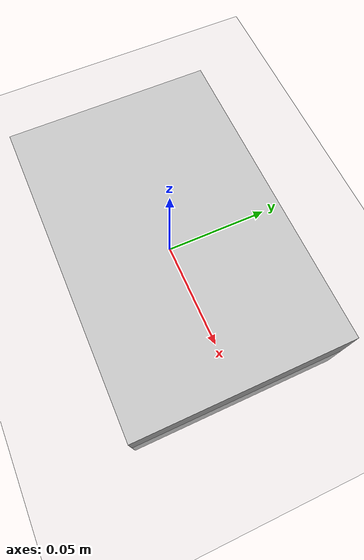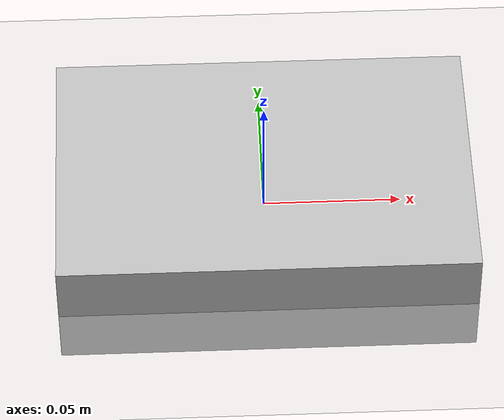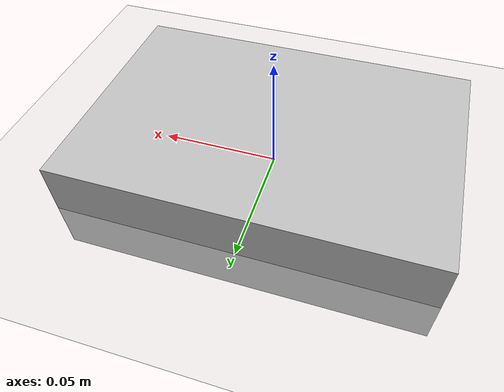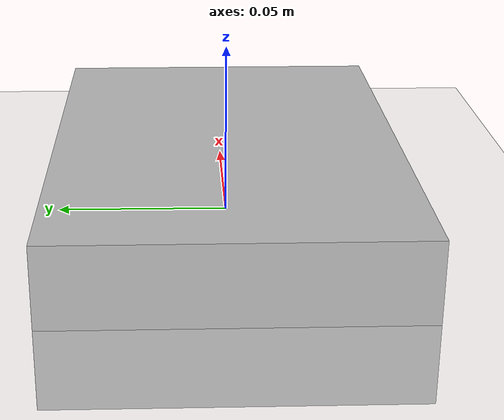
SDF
<?xml version="1.0" ?>

<sdf version="1.4">
    <!-- Custom world for the softfoot_thing. -->
    <!-- One can change this world to his needs or use another one. -->

    <world name="objects_softfoot_world">

        <include>
            <uri>model://ground_plane</uri>
        </include>
        <include>
            <uri>model://sun</uri>
        </include>
        <gui>
            <camera name="user_camera">
                <pose>-0.231 -0.351 0.419 0.000 0.744 1.020</pose>
            </camera>
        </gui>

        <!-- Box -->
        <model name="box">
            <pose>0 0 0 0 0 0</pose>
            <static>false</static>
            <link name='linkTable'>
                <pose>0.0 0 0 0 0 0</pose>
                <collision name="my_collisionTable">
                    <pose>0 0 0 0 0 0</pose>
                    <geometry>
                        <box>
                            <size>0.15 0.1 0.045</size>
                        </box>
                    </geometry>
                </collision>

                <visual name="my_visualTable">
                    <geometry>
                        <box>
                            <size>0.15 0.1 0.045</size>
                        </box>
                    </geometry>
                </visual>

                <self_collide>0</self_collide>
                <gravity>1</gravity>
            </link>
        </model>

    </world>

</sdf>
